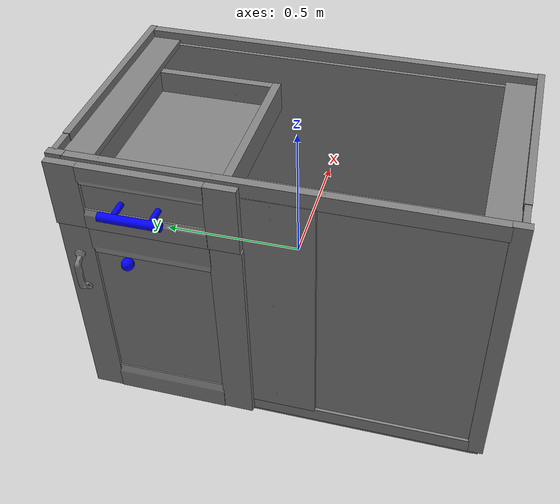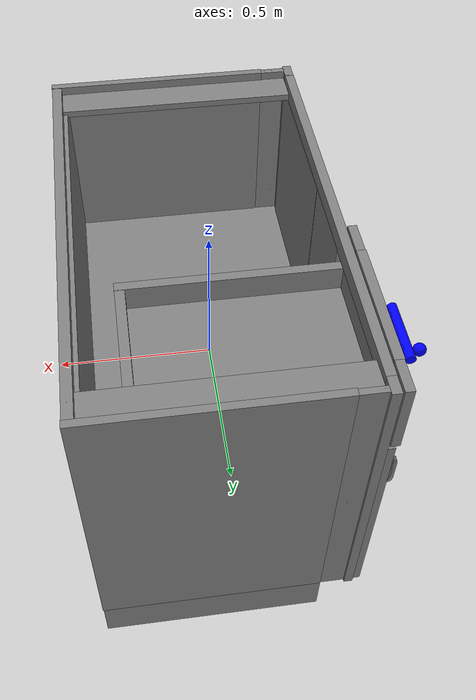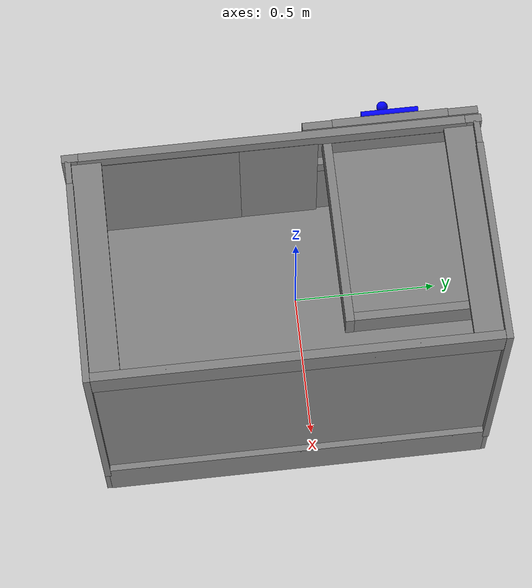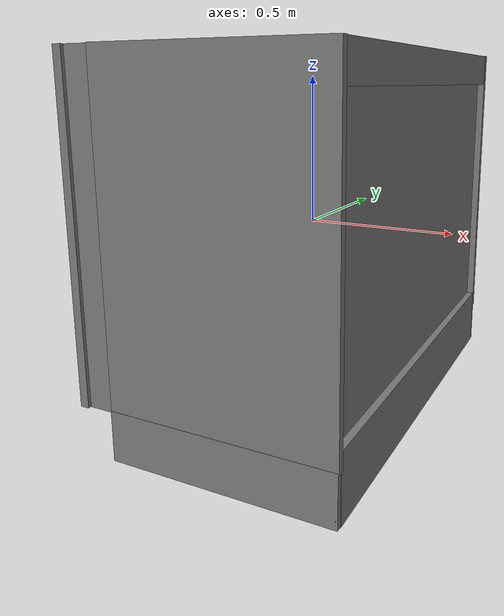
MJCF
<mujoco model="partnet_3cdabe258ed67a144da5feafe6f1c8fc">
    <compiler angle="radian" />
    <size njmax="500" nconmax="100" />
    <asset>
        <mesh name="convex-51" file="convex-51.stl" />
        <mesh name="convex-46" file="convex-46.stl" />
        <mesh name="convex-47" file="convex-47.stl" />
        <mesh name="convex-45" file="convex-45.stl" />
        <mesh name="convex-48" file="convex-48.stl" />
        <mesh name="convex-50" file="convex-50.stl" />
        <mesh name="convex-52" file="convex-52.stl" />
        <mesh name="convex-42" file="convex-42.stl" />
        <mesh name="convex-38" file="convex-38.stl" />
        <mesh name="convex-39" file="convex-39.stl" />
        <mesh name="convex-36" file="convex-36.stl" />
        <mesh name="convex-37" file="convex-37.stl" />
        <mesh name="convex-41" file="convex-41.stl" />
        <mesh name="convex-28" file="convex-28.stl" />
        <mesh name="convex-27" file="convex-27.stl" />
        <mesh name="convex-32" file="convex-32.stl" />
        <mesh name="convex-34" file="convex-34.stl" />
        <mesh name="convex-33" file="convex-33.stl" />
        <mesh name="convex-31" file="convex-31.stl" />
        <mesh name="convex-30" file="convex-30.stl" />
        <mesh name="convex-43" file="convex-43.stl" scale="2 2 2" />
        <mesh name="convex-2" file="convex-2.stl" />
        <mesh name="convex-16" file="convex-16.stl" />
        <mesh name="convex-15" file="convex-15.stl" />
        <mesh name="convex-12" file="convex-12.stl" />
        <mesh name="convex-11" file="convex-11.stl" />
        <mesh name="convex-6" file="convex-6.stl" />
        <mesh name="convex-3" file="convex-3.stl" />
        <mesh name="convex-8" file="convex-8.stl" />
        <mesh name="convex-18" file="convex-18.stl" />
        <mesh name="convex-9" file="convex-9.stl" />
        <mesh name="convex-22" file="convex-22.stl" />
        <mesh name="convex-5" file="convex-5.stl" />
        <mesh name="convex-21" file="convex-21.stl" />
        <mesh name="convex-7" file="convex-7.stl" />
        <mesh name="convex-4" file="convex-4.stl" />
        <mesh name="convex-23" file="convex-23.stl" />
        <mesh name="convex-24" file="convex-24.stl" />
        <mesh name="convex-53" file="convex-53.stl" />
        <mesh name="convex-19" file="convex-19.stl" />
        <mesh name="convex-13" file="convex-13.stl" />
        <mesh name="convex-20" file="convex-20.stl" />
        <mesh name="convex-17" file="convex-17.stl" />
    </asset>
    <worldbody>
        <body>
        <body name="object">
            <body name="link" pos="0 0 0" quat="0 0 0 1">
                <geom quat="0.7073883 0 0 0.7068252" type="mesh" mesh="convex-2"  group="0"/>
                <geom quat="0.7073883 0 0 0.7068252" type="mesh" mesh="convex-16" group="0" />
                <geom quat="0.7073883 0 0 0.7068252" type="mesh" mesh="convex-15" group="0" />
                <geom quat="0.7073883 0 0 0.7068252" type="mesh" mesh="convex-12" group="0" />
                <geom quat="0.7073883 0 0 0.7068252" type="mesh" mesh="convex-11" group="0" />
                <geom quat="0.7073883 0 0 0.7068252" type="mesh" mesh="convex-6"  group="0"/>
                <geom quat="0.7073883 0 0 0.7068252" type="mesh" mesh="convex-3"  group="0"/>
                <geom quat="0.7073883 0 0 0.7068252" type="mesh" mesh="convex-8"  group="0"/>
                <geom quat="0.7073883 0 0 0.7068252" type="mesh" mesh="convex-18" group="0" />
                <geom quat="0.7073883 0 0 0.7068252" type="mesh" mesh="convex-9"  group="0"/>
                <geom quat="0.7073883 0 0 0.7068252" type="mesh" mesh="convex-22" group="0" />
                <geom quat="0.7073883 0 0 0.7068252" type="mesh" mesh="convex-5"  group="0"/>
                <geom quat="0.7073883 0 0 0.7068252" type="mesh" mesh="convex-21" group="0" />
                <geom quat="0.7073883 0 0 0.7068252" type="mesh" mesh="convex-7"  group="0"/>
                <geom quat="0.7073883 0 0 0.7068252" type="mesh" mesh="convex-4"  group="0"/>
                <geom quat="0.7073883 0 0 0.7068252" type="mesh" mesh="convex-23" group="0" name="bar-23"/>
                <geom quat="0.7073883 0 0 0.7068252" type="mesh" mesh="convex-24" group="0" name="bar-24"/>
                <geom quat="0.7073883 0 0 0.7068252" type="mesh" mesh="convex-53" group="0" />
                <geom quat="0.7073883 0 0 0.7068252" type="mesh" mesh="convex-19" group="0" />
                <geom quat="0.7073883 0 0 0.7068252" type="mesh" mesh="convex-13" group="0" />
                <geom quat="0.7073883 0 0 0.7068252" type="mesh" mesh="convex-20" group="0" />
                <geom quat="0.7073883 0 0 0.7068252" type="mesh" mesh="convex-17" group="0" />
                <geom quat="0.7073883 0 0 0.7068252" type="mesh" mesh="convex-51" group="0" />
                <geom quat="0.7073883 0 0 0.7068252" type="mesh" mesh="convex-46" group="0" name="bar-46"/>
                <geom quat="0.7073883 0 0 0.7068252" type="mesh" mesh="convex-47" group="0" name="bar-47"/>
                <geom quat="0.7073883 0 0 0.7068252" type="mesh" mesh="convex-45" group="0" name="bar-45"/>
                <geom quat="0.7073883 0 0 0.7068252" type="mesh" mesh="convex-48" group="0" name="bar-48"/>
                <geom quat="0.7073883 0 0 0.7068252" type="mesh" mesh="convex-50" group="0" name="bar-50"/>
                <geom quat="0.7073883 0 0 0.7068252" type="mesh" mesh="convex-52" group="0" />
                <body name="link_0" pos="0.01 0 0" quat="0.7073883 0 0 0.7068252">
                    <inertial pos="-0.370823 -0.140063 0.443522" quat="0.503577 0.496329 -0.496172 0.503867" mass="11.7813" diaginertia="1.14787 0.80664 0.394266" />
                    <joint name="joint_0" pos="0 0 0" axis="0 -1 0" type="slide" limited="true" range="0 0.6" damping="1" frictionloss="1"/>
                    <body name="foo">
                        <geom type="mesh" mesh="convex-42" group="0" name="panel"/>
                        <geom type="mesh" mesh="convex-38" group="0" name="foo-38"/>
                        <geom type="mesh" mesh="convex-39" group="0" name="foo-39"/>
                        <geom type="mesh" mesh="convex-36" group="0" name="foo-36"/>
                        <geom type="mesh" mesh="convex-37" group="0" name="foo-37"/>
                        <geom type="mesh" mesh="convex-41" group="0" name="foo-41"/>
                        <geom type="mesh" mesh="convex-28" group="0" name="fo-28"/>
                        <geom type="mesh" mesh="convex-27" group="0" name="fo-27"/>
                        <geom type="mesh" mesh="convex-32" group="0" name="fo-32"/>
                        <geom type="mesh" mesh="convex-34" group="0" name="fo-34"/>
                        <geom type="mesh" mesh="convex-33" group="0" name="fo-33"/>
                        <geom type="mesh" mesh="convex-31" group="0" name="fo-31"/>
                        <body name="handle_body">
                            <geom type="cylinder" pos="-0.383323 -0.475 0.45" size=".015 .1 .015" euler="0 -1.57 0" group="0" rgba="0 0 1 1" name="handle"/>
                            <geom type="cylinder" pos="-0.32 -0.435 0.45" size=".01 .03 .01" euler="-1.57 0 0" group="0" rgba="0 0 1 1" name="handle-1"/>
                            <geom type="cylinder" pos="-0.44 -0.435 0.45" size=".01 .03 .01" euler="-1.57 0 0" group="0" rgba="0 0 1 1" name="handle-2"/>
                            <site name="handle" pos="-0.370823 -0.55 0.35" size="0.02" rgba="0 0 1 1" />
                        </body>
                    </body>
                </body>
            </body>
        </body>
        <site name="bottom_site" pos="0 0 -0.3" rgba="0 0 0 0" size="0.005"/>
        <site name="top_site" pos="0 0 0.3" rgba="0 0 0 0" size="0.005"/>
        <site name="horizontal_radius_site" pos="0.3 0 0" rgba="0 0 0 0" size="0.1"/>
    </body>
    </worldbody>
</mujoco>
